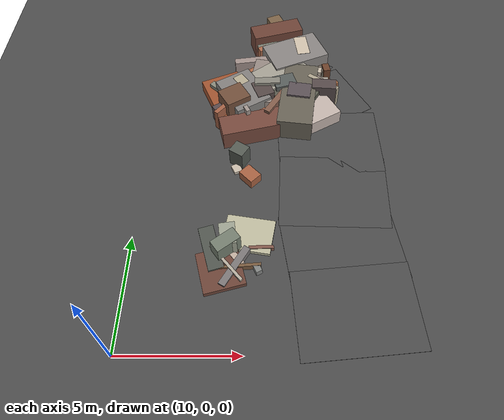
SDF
<sdf version="1.6">
 <world name="navitas_arena">
  <model name="ground_plane">
   <static>true</static>
   <link name="link">
    <collision name="collision">
     <geometry><plane><normal>0 0 1</normal><size>400 400</size></plane></geometry>
     <surface><friction><ode><mu>0.800</mu><mu2>0.800</mu2></ode></friction></surface>
    </collision>
    <visual name="visual">
     <cast_shadows>false</cast_shadows>
     <geometry><plane><normal>0 0 1</normal><size>400 400</size></plane></geometry>
     <material>
      <specular>0.04 0.04 0.04 1</specular>
      <script>
       <uri>file://media/materials/scripts/navitas_asphalt.material</uri>
       <name>Navitas/RealArenaAsphalt</name>
      </script>
     </material>
    </visual>
   </link>
  </model>
  <model name="road_orta_3_12">
   <static>true</static>
   <pose>19.454 1.800 0.040 0 0 1.664</pose>
   <link name="link">
    <collision name="col"><geometry><box><size>3.712 5.000 0.020</size></box></geometry></collision>
    <visual name="vis">
     <geometry><box><size>3.712 5.000 0.020</size></box></geometry>
     <material>
      <specular>0.04 0.04 0.04 1</specular>
      <script>
       <uri>file://media/materials/scripts/navitas_asphalt.material</uri>
       <name>Navitas/RealArenaAsphalt</name>
      </script>
     </material>
    </visual>
   </link>
  </model>
  <model name="road_orta_3_13">
   <static>true</static>
   <pose>19.097 4.600 0.040 0 0 1.730</pose>
   <link name="link">
    <collision name="col"><geometry><box><size>3.736 5.000 0.020</size></box></geometry></collision>
    <visual name="vis">
     <geometry><box><size>3.736 5.000 0.020</size></box></geometry>
     <material>
      <specular>0.04 0.04 0.04 1</specular>
      <script>
       <uri>file://media/materials/scripts/navitas_asphalt.material</uri>
       <name>Navitas/RealArenaAsphalt</name>
      </script>
     </material>
    </visual>
   </link>
  </model>
  <model name="road_orta_3_14">
   <static>true</static>
   <pose>18.908 7.460 0.040 0 0 1.546</pose>
   <link name="link">
    <collision name="col"><geometry><box><size>3.821 5.000 0.020</size></box></geometry></collision>
    <visual name="vis">
     <geometry><box><size>3.821 5.000 0.020</size></box></geometry>
     <material>
      <specular>0.04 0.04 0.04 1</specular>
      <script>
       <uri>file://media/materials/scripts/navitas_asphalt.material</uri>
       <name>Navitas/RealArenaAsphalt</name>
      </script>
     </material>
    </visual>
   </link>
  </model>
  <model name="road_orta_3_15">
   <static>true</static>
   <pose>18.885 10.340 0.040 0 0 1.612</pose>
   <link name="link">
    <collision name="col"><geometry><box><size>3.742 5.000 0.020</size></box></geometry></collision>
    <visual name="vis">
     <geometry><box><size>3.742 5.000 0.020</size></box></geometry>
     <material>
      <specular>0.04 0.04 0.04 1</specular>
      <script>
       <uri>file://media/materials/scripts/navitas_asphalt.material</uri>
       <name>Navitas/RealArenaAsphalt</name>
      </script>
     </material>
    </visual>
   </link>
  </model>
  <model name="road_orta_3_16">
   <static>true</static>
   <pose>18.223 12.833 0.040 0 0 2.083</pose>
   <link name="link">
    <collision name="col"><geometry><box><size>3.362 5.000 0.020</size></box></geometry></collision>
    <visual name="vis">
     <geometry><box><size>3.362 5.000 0.020</size></box></geometry>
     <material>
      <specular>0.04 0.04 0.04 1</specular>
      <script>
       <uri>file://media/materials/scripts/navitas_asphalt.material</uri>
       <name>Navitas/RealArenaAsphalt</name>
      </script>
     </material>
    </visual>
   </link>
  </model>
  <model name="road_orta_3_17">
   <static>true</static>
   <pose>16.523 14.688 0.040 0 0 2.523</pose>
   <link name="link">
    <collision name="col"><geometry><box><size>3.594 5.000 0.020</size></box></geometry></collision>
    <visual name="vis">
     <geometry><box><size>3.594 5.000 0.020</size></box></geometry>
     <material>
      <specular>0.04 0.04 0.04 1</specular>
      <script>
       <uri>file://media/materials/scripts/navitas_asphalt.material</uri>
       <name>Navitas/RealArenaAsphalt</name>
      </script>
     </material>
    </visual>
   </link>
  </model>
  <model name="blk_orta_3_2_0">
   <static>true</static>
   <pose>17.226 13.885 0.000 0 0 0</pose>
   <link name="link">
    <collision name="col_0">
     <pose>1.374 -0.624 0.568 0.000 0.000 0.205</pose>
     <geometry><box><size>1.724 0.210 1.137</size></box></geometry>
    </collision>
    <visual name="vis_0">
     <pose>1.374 -0.624 0.568 0.000 0.000 0.205</pose>
     <geometry><box><size>1.724 0.210 1.137</size></box></geometry>
     <material>
      <ambient>0.62 0.40 0.26 1</ambient>
      <diffuse>0.67 0.43 0.28 1</diffuse>
      <specular>0.05 0.05 0.045 1</specular>
     </material>
    </visual>
    <collision name="col_1">
     <pose>0.160 -1.307 0.623 0.000 0.000 1.444</pose>
     <geometry><box><size>4.067 1.708 1.245</size></box></geometry>
    </collision>
    <visual name="vis_1">
     <pose>0.160 -1.307 0.623 0.000 0.000 1.444</pose>
     <geometry><box><size>4.067 1.708 1.245</size></box></geometry>
     <material>
      <ambient>0.38 0.36 0.31 1</ambient>
      <diffuse>0.41 0.39 0.34 1</diffuse>
      <specular>0.05 0.05 0.045 1</specular>
     </material>
    </visual>
    <collision name="col_2">
     <pose>0.077 -1.583 0.586 0.000 0.000 2.283</pose>
     <geometry><box><size>1.327 0.203 1.172</size></box></geometry>
    </collision>
    <visual name="vis_2">
     <pose>0.077 -1.583 0.586 0.000 0.000 2.283</pose>
     <geometry><box><size>1.327 0.203 1.172</size></box></geometry>
     <material>
      <ambient>0.56 0.32 0.22 1</ambient>
      <diffuse>0.60 0.35 0.24 1</diffuse>
      <specular>0.05 0.05 0.045 1</specular>
     </material>
    </visual>
    <collision name="col_3">
     <pose>-0.698 1.566 0.465 0.000 0.000 0.122</pose>
     <geometry><box><size>0.433 0.311 0.930</size></box></geometry>
    </collision>
    <visual name="vis_3">
     <pose>-0.698 1.566 0.465 0.000 0.000 0.122</pose>
     <geometry><box><size>0.433 0.311 0.930</size></box></geometry>
     <material>
      <ambient>0.50 0.47 0.43 1</ambient>
      <diffuse>0.54 0.50 0.46 1</diffuse>
      <specular>0.05 0.05 0.045 1</specular>
     </material>
    </visual>
    <collision name="col_4">
     <pose>-0.459 0.687 0.471 0.000 0.000 2.238</pose>
     <geometry><box><size>0.347 0.515 0.943</size></box></geometry>
    </collision>
    <visual name="vis_4">
     <pose>-0.459 0.687 0.471 0.000 0.000 2.238</pose>
     <geometry><box><size>0.347 0.515 0.943</size></box></geometry>
     <material>
      <ambient>0.41 0.25 0.18 1</ambient>
      <diffuse>0.44 0.27 0.20 1</diffuse>
      <specular>0.05 0.05 0.045 1</specular>
     </material>
    </visual>
    <collision name="col_5">
     <pose>-0.523 -0.541 0.673 0.000 0.000 0.294</pose>
     <geometry><box><size>1.106 0.823 1.346</size></box></geometry>
    </collision>
    <visual name="vis_5">
     <pose>-0.523 -0.541 0.673 0.000 0.000 0.294</pose>
     <geometry><box><size>1.106 0.823 1.346</size></box></geometry>
     <material>
      <ambient>0.33 0.35 0.33 1</ambient>
      <diffuse>0.35 0.37 0.36 1</diffuse>
      <specular>0.05 0.05 0.045 1</specular>
     </material>
    </visual>
    <collision name="col_6">
     <pose>0.767 -1.237 0.401 0.000 0.000 2.089</pose>
     <geometry><box><size>3.151 1.680 0.802</size></box></geometry>
    </collision>
    <visual name="vis_6">
     <pose>0.767 -1.237 0.401 0.000 0.000 2.089</pose>
     <geometry><box><size>3.151 1.680 0.802</size></box></geometry>
     <material>
      <ambient>0.71 0.66 0.63 1</ambient>
      <diffuse>0.77 0.71 0.68 1</diffuse>
      <specular>0.05 0.05 0.045 1</specular>
     </material>
    </visual>
    <collision name="col_7">
     <pose>1.459 0.975 0.288 0.000 0.000 2.180</pose>
     <geometry><box><size>0.374 0.271 0.577</size></box></geometry>
    </collision>
    <visual name="vis_7">
     <pose>1.459 0.975 0.288 0.000 0.000 2.180</pose>
     <geometry><box><size>0.374 0.271 0.577</size></box></geometry>
     <material>
      <ambient>0.55 0.55 0.49 1</ambient>
      <diffuse>0.59 0.60 0.53 1</diffuse>
      <specular>0.05 0.05 0.045 1</specular>
     </material>
    </visual>
   </link>
  </model>
  <model name="blk_orta_3_2_1">
   <static>true</static>
   <pose>14.867 12.426 0.000 0 0 0</pose>
   <link name="link">
    <collision name="col_0">
     <pose>-1.225 0.611 0.421 0.000 0.000 2.402</pose>
     <geometry><box><size>1.885 0.304 0.842</size></box></geometry>
    </collision>
    <visual name="vis_0">
     <pose>-1.225 0.611 0.421 0.000 0.000 2.402</pose>
     <geometry><box><size>1.885 0.304 0.842</size></box></geometry>
     <material>
      <ambient>0.50 0.50 0.44 1</ambient>
      <diffuse>0.54 0.54 0.48 1</diffuse>
      <specular>0.05 0.05 0.045 1</specular>
     </material>
    </visual>
    <collision name="col_1">
     <pose>-0.673 -0.235 0.782 0.000 0.000 3.681</pose>
     <geometry><box><size>1.243 1.107 1.563</size></box></geometry>
    </collision>
    <visual name="vis_1">
     <pose>-0.673 -0.235 0.782 0.000 0.000 3.681</pose>
     <geometry><box><size>1.243 1.107 1.563</size></box></geometry>
     <material>
      <ambient>0.42 0.29 0.21 1</ambient>
      <diffuse>0.45 0.31 0.23 1</diffuse>
      <specular>0.05 0.05 0.045 1</specular>
     </material>
    </visual>
    <collision name="col_2">
     <pose>0.274 -1.508 0.511 0.000 0.000 3.386</pose>
     <geometry><box><size>3.200 1.166 1.021</size></box></geometry>
    </collision>
    <visual name="vis_2">
     <pose>0.274 -1.508 0.511 0.000 0.000 3.386</pose>
     <geometry><box><size>3.200 1.166 1.021</size></box></geometry>
     <material>
      <ambient>0.44 0.27 0.22 1</ambient>
      <diffuse>0.47 0.29 0.24 1</diffuse>
      <specular>0.05 0.05 0.045 1</specular>
     </material>
    </visual>
    <collision name="col_3">
     <pose>-1.006 0.580 0.314 0.000 0.000 1.981</pose>
     <geometry><box><size>2.894 1.985 0.629</size></box></geometry>
    </collision>
    <visual name="vis_3">
     <pose>-1.006 0.580 0.314 0.000 0.000 1.981</pose>
     <geometry><box><size>2.894 1.985 0.629</size></box></geometry>
     <material>
      <ambient>0.58 0.31 0.18 1</ambient>
      <diffuse>0.63 0.33 0.19 1</diffuse>
      <specular>0.05 0.05 0.045 1</specular>
     </material>
    </visual>
    <collision name="col_4">
     <pose>0.222 0.332 0.520 0.000 0.000 4.256</pose>
     <geometry><box><size>0.295 0.303 1.040</size></box></geometry>
    </collision>
    <visual name="vis_4">
     <pose>0.222 0.332 0.520 0.000 0.000 4.256</pose>
     <geometry><box><size>0.295 0.303 1.040</size></box></geometry>
     <material>
      <ambient>0.38 0.28 0.21 1</ambient>
      <diffuse>0.42 0.30 0.23 1</diffuse>
      <specular>0.05 0.05 0.045 1</specular>
     </material>
    </visual>
    <collision name="col_5">
     <pose>-0.257 0.365 0.619 0.000 0.000 2.109</pose>
     <geometry><box><size>2.383 1.904 1.238</size></box></geometry>
    </collision>
    <visual name="vis_5">
     <pose>-0.257 0.365 0.619 0.000 0.000 2.109</pose>
     <geometry><box><size>2.383 1.904 1.238</size></box></geometry>
     <material>
      <ambient>0.47 0.46 0.45 1</ambient>
      <diffuse>0.51 0.50 0.49 1</diffuse>
      <specular>0.05 0.05 0.045 1</specular>
     </material>
    </visual>
    <collision name="col_6">
     <pose>0.960 0.823 0.722 0.000 0.000 3.194</pose>
     <geometry><box><size>1.298 0.415 1.445</size></box></geometry>
    </collision>
    <visual name="vis_6">
     <pose>0.960 0.823 0.722 0.000 0.000 3.194</pose>
     <geometry><box><size>1.298 0.415 1.445</size></box></geometry>
     <material>
      <ambient>0.50 0.49 0.45 1</ambient>
      <diffuse>0.54 0.53 0.49 1</diffuse>
      <specular>0.05 0.05 0.045 1</specular>
     </material>
    </visual>
    <collision name="col_7">
     <pose>-0.109 -0.465 0.287 0.000 0.000 4.123</pose>
     <geometry><box><size>2.295 0.278 0.574</size></box></geometry>
    </collision>
    <visual name="vis_7">
     <pose>-0.109 -0.465 0.287 0.000 0.000 4.123</pose>
     <geometry><box><size>2.295 0.278 0.574</size></box></geometry>
     <material>
      <ambient>0.39 0.26 0.23 1</ambient>
      <diffuse>0.42 0.28 0.25 1</diffuse>
      <specular>0.05 0.05 0.045 1</specular>
     </material>
    </visual>
   </link>
  </model>
  <model name="blk_orta_3_2_2">
   <static>true</static>
   <pose>16.399 16.655 0.000 0 0 0</pose>
   <link name="link">
    <collision name="col_0">
     <pose>0.217 0.101 0.414 0.000 0.000 0.162</pose>
     <geometry><box><size>2.706 0.398 0.828</size></box></geometry>
    </collision>
    <visual name="vis_0">
     <pose>0.217 0.101 0.414 0.000 0.000 0.162</pose>
     <geometry><box><size>2.706 0.398 0.828</size></box></geometry>
     <material>
      <ambient>0.45 0.47 0.42 1</ambient>
      <diffuse>0.49 0.50 0.45 1</diffuse>
      <specular>0.05 0.05 0.045 1</specular>
     </material>
    </visual>
    <collision name="col_1">
     <pose>-0.807 -0.492 0.496 0.000 0.000 0.450</pose>
     <geometry><box><size>0.493 0.358 0.991</size></box></geometry>
    </collision>
    <visual name="vis_1">
     <pose>-0.807 -0.492 0.496 0.000 0.000 0.450</pose>
     <geometry><box><size>0.493 0.358 0.991</size></box></geometry>
     <material>
      <ambient>0.62 0.39 0.28 1</ambient>
      <diffuse>0.67 0.42 0.30 1</diffuse>
      <specular>0.05 0.05 0.045 1</specular>
     </material>
    </visual>
    <collision name="col_2">
     <pose>-0.033 1.403 0.619 0.000 0.000 0.413</pose>
     <geometry><box><size>0.760 1.230 1.238</size></box></geometry>
    </collision>
    <visual name="vis_2">
     <pose>-0.033 1.403 0.619 0.000 0.000 0.413</pose>
     <geometry><box><size>0.760 1.230 1.238</size></box></geometry>
     <material>
      <ambient>0.46 0.36 0.26 1</ambient>
      <diffuse>0.49 0.39 0.28 1</diffuse>
      <specular>0.05 0.05 0.045 1</specular>
     </material>
    </visual>
    <collision name="col_3">
     <pose>-0.078 0.823 0.645 0.000 0.000 0.286</pose>
     <geometry><box><size>2.727 1.050 1.290</size></box></geometry>
    </collision>
    <visual name="vis_3">
     <pose>-0.078 0.823 0.645 0.000 0.000 0.286</pose>
     <geometry><box><size>2.727 1.050 1.290</size></box></geometry>
     <material>
      <ambient>0.40 0.24 0.20 1</ambient>
      <diffuse>0.43 0.26 0.21 1</diffuse>
      <specular>0.05 0.05 0.045 1</specular>
     </material>
    </visual>
    <collision name="col_4">
     <pose>-0.440 1.229 0.562 0.000 0.000 -1.252</pose>
     <geometry><box><size>0.284 0.367 1.125</size></box></geometry>
    </collision>
    <visual name="vis_4">
     <pose>-0.440 1.229 0.562 0.000 0.000 -1.252</pose>
     <geometry><box><size>0.284 0.367 1.125</size></box></geometry>
     <material>
      <ambient>0.67 0.39 0.29 1</ambient>
      <diffuse>0.72 0.42 0.31 1</diffuse>
      <specular>0.05 0.05 0.045 1</specular>
     </material>
    </visual>
    <collision name="col_5">
     <pose>-0.792 -1.305 0.496 0.000 0.000 0.150</pose>
     <geometry><box><size>3.058 0.379 0.991</size></box></geometry>
    </collision>
    <visual name="vis_5">
     <pose>-0.792 -1.305 0.496 0.000 0.000 0.150</pose>
     <geometry><box><size>3.058 0.379 0.991</size></box></geometry>
     <material>
      <ambient>0.59 0.53 0.51 1</ambient>
      <diffuse>0.64 0.57 0.55 1</diffuse>
      <specular>0.05 0.05 0.045 1</specular>
     </material>
    </visual>
    <collision name="col_6">
     <pose>0.907 -1.005 0.654 0.000 0.000 0.400</pose>
     <geometry><box><size>3.001 1.937 1.307</size></box></geometry>
    </collision>
    <visual name="vis_6">
     <pose>0.907 -1.005 0.654 0.000 0.000 0.400</pose>
     <geometry><box><size>3.001 1.937 1.307</size></box></geometry>
     <material>
      <ambient>0.50 0.48 0.47 1</ambient>
      <diffuse>0.54 0.52 0.51 1</diffuse>
      <specular>0.05 0.05 0.045 1</specular>
     </material>
    </visual>
    <collision name="col_7">
     <pose>0.331 -0.548 0.466 0.000 0.000 0.179</pose>
     <geometry><box><size>0.431 0.306 0.932</size></box></geometry>
    </collision>
    <visual name="vis_7">
     <pose>0.331 -0.548 0.466 0.000 0.000 0.179</pose>
     <geometry><box><size>0.431 0.306 0.932</size></box></geometry>
     <material>
      <ambient>0.58 0.34 0.23 1</ambient>
      <diffuse>0.62 0.36 0.25 1</diffuse>
      <specular>0.05 0.05 0.045 1</specular>
     </material>
    </visual>
   </link>
  </model>
  <model name="blk_orta_3_2_4">
   <static>true</static>
   <pose>15.656 12.821 0.000 0 0 0</pose>
   <link name="link">
    <collision name="col_0">
     <pose>-0.821 -1.384 0.662 0.000 0.000 2.039</pose>
     <geometry><box><size>0.386 0.204 1.324</size></box></geometry>
    </collision>
    <visual name="vis_0">
     <pose>-0.821 -1.384 0.662 0.000 0.000 2.039</pose>
     <geometry><box><size>0.386 0.204 1.324</size></box></geometry>
     <material>
      <ambient>0.59 0.54 0.52 1</ambient>
      <diffuse>0.64 0.59 0.56 1</diffuse>
      <specular>0.05 0.05 0.045 1</specular>
     </material>
    </visual>
    <collision name="col_1">
     <pose>-1.393 -0.432 0.589 0.000 0.000 0.861</pose>
     <geometry><box><size>2.917 0.229 1.177</size></box></geometry>
    </collision>
    <visual name="vis_1">
     <pose>-1.393 -0.432 0.589 0.000 0.000 0.861</pose>
     <geometry><box><size>2.917 0.229 1.177</size></box></geometry>
     <material>
      <ambient>0.60 0.36 0.26 1</ambient>
      <diffuse>0.65 0.39 0.28 1</diffuse>
      <specular>0.05 0.05 0.045 1</specular>
     </material>
    </visual>
    <collision name="col_2">
     <pose>1.421 0.889 0.439 0.000 0.000 3.036</pose>
     <geometry><box><size>3.778 1.059 0.878</size></box></geometry>
    </collision>
    <visual name="vis_2">
     <pose>1.421 0.889 0.439 0.000 0.000 3.036</pose>
     <geometry><box><size>3.778 1.059 0.878</size></box></geometry>
     <material>
      <ambient>0.62 0.60 0.55 1</ambient>
      <diffuse>0.67 0.64 0.59 1</diffuse>
      <specular>0.05 0.05 0.045 1</specular>
     </material>
    </visual>
    <collision name="col_3">
     <pose>-1.183 0.680 0.620 0.000 0.000 2.212</pose>
     <geometry><box><size>0.657 0.540 1.240</size></box></geometry>
    </collision>
    <visual name="vis_3">
     <pose>-1.183 0.680 0.620 0.000 0.000 2.212</pose>
     <geometry><box><size>0.657 0.540 1.240</size></box></geometry>
     <material>
      <ambient>0.66 0.62 0.53 1</ambient>
      <diffuse>0.71 0.67 0.57 1</diffuse>
      <specular>0.05 0.05 0.045 1</specular>
     </material>
    </visual>
    <collision name="col_4">
     <pose>-1.363 -0.284 0.446 0.000 0.000 0.547</pose>
     <geometry><box><size>2.714 0.290 0.891</size></box></geometry>
    </collision>
    <visual name="vis_4">
     <pose>-1.363 -0.284 0.446 0.000 0.000 0.547</pose>
     <geometry><box><size>2.714 0.290 0.891</size></box></geometry>
     <material>
      <ambient>0.32 0.27 0.28 1</ambient>
      <diffuse>0.35 0.29 0.30 1</diffuse>
      <specular>0.05 0.05 0.045 1</specular>
     </material>
    </visual>
    <collision name="col_5">
     <pose>1.384 0.277 0.543 0.000 0.000 2.609</pose>
     <geometry><box><size>2.762 1.862 1.086</size></box></geometry>
    </collision>
    <visual name="vis_5">
     <pose>1.384 0.277 0.543 0.000 0.000 2.609</pose>
     <geometry><box><size>2.762 1.862 1.086</size></box></geometry>
     <material>
      <ambient>0.34 0.34 0.29 1</ambient>
      <diffuse>0.36 0.36 0.31 1</diffuse>
      <specular>0.05 0.05 0.045 1</specular>
     </material>
    </visual>
    <collision name="col_6">
     <pose>-0.057 0.056 0.635 0.000 0.000 1.956</pose>
     <geometry><box><size>1.061 0.878 1.270</size></box></geometry>
    </collision>
    <visual name="vis_6">
     <pose>-0.057 0.056 0.635 0.000 0.000 1.956</pose>
     <geometry><box><size>1.061 0.878 1.270</size></box></geometry>
     <material>
      <ambient>0.32 0.27 0.25 1</ambient>
      <diffuse>0.34 0.29 0.28 1</diffuse>
      <specular>0.05 0.05 0.045 1</specular>
     </material>
    </visual>
   </link>
  </model>
  <model name="blk_orta_3_2_5">
   <static>true</static>
   <pose>16.195 12.945 0.000 0 0 0</pose>
   <link name="link">
    <collision name="col_0">
     <pose>-0.383 0.126 0.357 0.000 0.000 0.926</pose>
     <geometry><box><size>0.663 0.346 0.713</size></box></geometry>
    </collision>
    <visual name="vis_0">
     <pose>-0.383 0.126 0.357 0.000 0.000 0.926</pose>
     <geometry><box><size>0.663 0.346 0.713</size></box></geometry>
     <material>
      <ambient>0.40 0.26 0.22 1</ambient>
      <diffuse>0.43 0.28 0.24 1</diffuse>
      <specular>0.05 0.05 0.045 1</specular>
     </material>
    </visual>
    <collision name="col_1">
     <pose>0.348 -0.371 0.591 0.000 0.000 1.014</pose>
     <geometry><box><size>2.811 0.310 1.182</size></box></geometry>
    </collision>
    <visual name="vis_1">
     <pose>0.348 -0.371 0.591 0.000 0.000 1.014</pose>
     <geometry><box><size>2.811 0.310 1.182</size></box></geometry>
     <material>
      <ambient>0.48 0.34 0.28 1</ambient>
      <diffuse>0.52 0.37 0.30 1</diffuse>
      <specular>0.05 0.05 0.045 1</specular>
     </material>
    </visual>
    <collision name="col_2">
     <pose>-0.346 0.633 0.345 0.000 0.000 -0.951</pose>
     <geometry><box><size>3.180 1.309 0.690</size></box></geometry>
    </collision>
    <visual name="vis_2">
     <pose>-0.346 0.633 0.345 0.000 0.000 -0.951</pose>
     <geometry><box><size>3.180 1.309 0.690</size></box></geometry>
     <material>
      <ambient>0.63 0.39 0.26 1</ambient>
      <diffuse>0.68 0.42 0.28 1</diffuse>
      <specular>0.05 0.05 0.045 1</specular>
     </material>
    </visual>
    <collision name="col_3">
     <pose>0.280 0.983 0.519 0.000 0.000 0.106</pose>
     <geometry><box><size>2.496 2.096 1.038</size></box></geometry>
    </collision>
    <visual name="vis_3">
     <pose>0.280 0.983 0.519 0.000 0.000 0.106</pose>
     <geometry><box><size>2.496 2.096 1.038</size></box></geometry>
     <material>
      <ambient>0.52 0.52 0.48 1</ambient>
      <diffuse>0.57 0.56 0.52 1</diffuse>
      <specular>0.05 0.05 0.045 1</specular>
     </material>
    </visual>
    <collision name="col_4">
     <pose>-0.549 -0.787 0.544 0.000 0.000 -0.005</pose>
     <geometry><box><size>3.069 0.200 1.089</size></box></geometry>
    </collision>
    <visual name="vis_4">
     <pose>-0.549 -0.787 0.544 0.000 0.000 -0.005</pose>
     <geometry><box><size>3.069 0.200 1.089</size></box></geometry>
     <material>
      <ambient>0.57 0.53 0.50 1</ambient>
      <diffuse>0.62 0.57 0.54 1</diffuse>
      <specular>0.05 0.05 0.045 1</specular>
     </material>
    </visual>
    <collision name="col_5">
     <pose>0.012 1.030 0.527 0.000 0.000 1.393</pose>
     <geometry><box><size>2.161 2.375 1.054</size></box></geometry>
    </collision>
    <visual name="vis_5">
     <pose>0.012 1.030 0.527 0.000 0.000 1.393</pose>
     <geometry><box><size>2.161 2.375 1.054</size></box></geometry>
     <material>
      <ambient>0.54 0.50 0.47 1</ambient>
      <diffuse>0.59 0.54 0.51 1</diffuse>
      <specular>0.05 0.05 0.045 1</specular>
     </material>
    </visual>
    <collision name="col_6">
     <pose>0.936 0.249 0.339 0.000 0.000 0.683</pose>
     <geometry><box><size>3.009 0.389 0.678</size></box></geometry>
    </collision>
    <visual name="vis_6">
     <pose>0.936 0.249 0.339 0.000 0.000 0.683</pose>
     <geometry><box><size>3.009 0.389 0.678</size></box></geometry>
     <material>
      <ambient>0.68 0.39 0.30 1</ambient>
      <diffuse>0.73 0.42 0.32 1</diffuse>
      <specular>0.05 0.05 0.045 1</specular>
     </material>
    </visual>
    <collision name="col_7">
     <pose>-0.011 0.270 0.521 0.000 0.000 -0.691</pose>
     <geometry><box><size>3.160 0.919 1.043</size></box></geometry>
    </collision>
    <visual name="vis_7">
     <pose>-0.011 0.270 0.521 0.000 0.000 -0.691</pose>
     <geometry><box><size>3.160 0.919 1.043</size></box></geometry>
     <material>
      <ambient>0.31 0.31 0.29 1</ambient>
      <diffuse>0.34 0.33 0.32 1</diffuse>
      <specular>0.05 0.05 0.045 1</specular>
     </material>
    </visual>
    <collision name="col_8">
     <pose>-0.369 0.698 0.601 0.000 0.000 0.649</pose>
     <geometry><box><size>4.476 1.647 1.201</size></box></geometry>
    </collision>
    <visual name="vis_8">
     <pose>-0.369 0.698 0.601 0.000 0.000 0.649</pose>
     <geometry><box><size>4.476 1.647 1.201</size></box></geometry>
     <material>
      <ambient>0.60 0.59 0.53 1</ambient>
      <diffuse>0.65 0.63 0.58 1</diffuse>
      <specular>0.05 0.05 0.045 1</specular>
     </material>
    </visual>
    <collision name="col_9">
     <pose>-0.308 -0.574 0.350 0.000 0.000 0.838</pose>
     <geometry><box><size>2.304 0.305 0.700</size></box></geometry>
    </collision>
    <visual name="vis_9">
     <pose>-0.308 -0.574 0.350 0.000 0.000 0.838</pose>
     <geometry><box><size>2.304 0.305 0.700</size></box></geometry>
     <material>
      <ambient>0.65 0.39 0.28 1</ambient>
      <diffuse>0.70 0.42 0.30 1</diffuse>
      <specular>0.05 0.05 0.045 1</specular>
     </material>
    </visual>
   </link>
  </model>
  <model name="blk_orta_3_2_6">
   <static>true</static>
   <pose>17.755 14.159 0.000 0 0 0</pose>
   <link name="link">
    <collision name="col_0">
     <pose>0.923 -0.809 0.625 0.000 0.000 -0.608</pose>
     <geometry><box><size>1.742 0.242 1.250</size></box></geometry>
    </collision>
    <visual name="vis_0">
     <pose>0.923 -0.809 0.625 0.000 0.000 -0.608</pose>
     <geometry><box><size>1.742 0.242 1.250</size></box></geometry>
     <material>
      <ambient>0.64 0.60 0.52 1</ambient>
      <diffuse>0.69 0.65 0.56 1</diffuse>
      <specular>0.05 0.05 0.045 1</specular>
     </material>
    </visual>
    <collision name="col_1">
     <pose>-0.289 0.894 0.365 0.000 0.000 -0.596</pose>
     <geometry><box><size>0.322 0.548 0.730</size></box></geometry>
    </collision>
    <visual name="vis_1">
     <pose>-0.289 0.894 0.365 0.000 0.000 -0.596</pose>
     <geometry><box><size>0.322 0.548 0.730</size></box></geometry>
     <material>
      <ambient>0.43 0.28 0.23 1</ambient>
      <diffuse>0.46 0.30 0.25 1</diffuse>
      <specular>0.05 0.05 0.045 1</specular>
     </material>
    </visual>
    <collision name="col_2">
     <pose>0.957 -1.051 0.673 0.000 0.000 -0.070</pose>
     <geometry><box><size>1.210 0.639 1.346</size></box></geometry>
    </collision>
    <visual name="vis_2">
     <pose>0.957 -1.051 0.673 0.000 0.000 -0.070</pose>
     <geometry><box><size>1.210 0.639 1.346</size></box></geometry>
     <material>
      <ambient>0.31 0.27 0.27 1</ambient>
      <diffuse>0.34 0.29 0.29 1</diffuse>
      <specular>0.05 0.05 0.045 1</specular>
     </material>
    </visual>
    <collision name="col_3">
     <pose>-0.109 -0.712 0.412 0.000 0.000 -0.140</pose>
     <geometry><box><size>0.425 0.661 0.824</size></box></geometry>
    </collision>
    <visual name="vis_3">
     <pose>-0.109 -0.712 0.412 0.000 0.000 -0.140</pose>
     <geometry><box><size>0.425 0.661 0.824</size></box></geometry>
     <material>
      <ambient>0.53 0.54 0.48 1</ambient>
      <diffuse>0.58 0.58 0.52 1</diffuse>
      <specular>0.05 0.05 0.045 1</specular>
     </material>
    </visual>
    <collision name="col_4">
     <pose>1.212 0.771 0.386 0.000 0.000 0.197</pose>
     <geometry><box><size>0.359 0.529 0.771</size></box></geometry>
    </collision>
    <visual name="vis_4">
     <pose>1.212 0.771 0.386 0.000 0.000 0.197</pose>
     <geometry><box><size>0.359 0.529 0.771</size></box></geometry>
     <material>
      <ambient>0.39 0.24 0.16 1</ambient>
      <diffuse>0.43 0.26 0.17 1</diffuse>
      <specular>0.05 0.05 0.045 1</specular>
     </material>
    </visual>
    <collision name="col_5">
     <pose>-1.534 0.057 0.576 0.000 0.000 2.044</pose>
     <geometry><box><size>0.663 0.366 1.152</size></box></geometry>
    </collision>
    <visual name="vis_5">
     <pose>-1.534 0.057 0.576 0.000 0.000 2.044</pose>
     <geometry><box><size>0.663 0.366 1.152</size></box></geometry>
     <material>
      <ambient>0.32 0.30 0.29 1</ambient>
      <diffuse>0.34 0.32 0.31 1</diffuse>
      <specular>0.05 0.05 0.045 1</specular>
     </material>
    </visual>
    <collision name="col_6">
     <pose>-0.309 -1.455 0.673 0.000 0.000 -0.157</pose>
     <geometry><box><size>1.148 0.920 1.346</size></box></geometry>
    </collision>
    <visual name="vis_6">
     <pose>-0.309 -1.455 0.673 0.000 0.000 -0.157</pose>
     <geometry><box><size>1.148 0.920 1.346</size></box></geometry>
     <material>
      <ambient>0.34 0.30 0.31 1</ambient>
      <diffuse>0.36 0.32 0.34 1</diffuse>
      <specular>0.05 0.05 0.045 1</specular>
     </material>
    </visual>
    <collision name="col_7">
     <pose>0.482 -1.092 0.331 0.000 0.000 0.292</pose>
     <geometry><box><size>0.296 0.568 0.662</size></box></geometry>
    </collision>
    <visual name="vis_7">
     <pose>0.482 -1.092 0.331 0.000 0.000 0.292</pose>
     <geometry><box><size>0.296 0.568 0.662</size></box></geometry>
     <material>
      <ambient>0.36 0.32 0.32 1</ambient>
      <diffuse>0.38 0.35 0.35 1</diffuse>
      <specular>0.05 0.05 0.045 1</specular>
     </material>
    </visual>
    <collision name="col_8">
     <pose>0.159 0.327 0.530 0.000 0.000 -0.150</pose>
     <geometry><box><size>1.504 0.367 1.061</size></box></geometry>
    </collision>
    <visual name="vis_8">
     <pose>0.159 0.327 0.530 0.000 0.000 -0.150</pose>
     <geometry><box><size>1.504 0.367 1.061</size></box></geometry>
     <material>
      <ambient>0.73 0.69 0.62 1</ambient>
      <diffuse>0.79 0.74 0.67 1</diffuse>
      <specular>0.05 0.05 0.045 1</specular>
     </material>
    </visual>
   </link>
  </model>
  <model name="blk_orta_3_2_7">
   <static>true</static>
   <pose>17.480 15.430 0.000 0 0 0</pose>
   <link name="link">
    <collision name="col_0">
     <pose>0.188 0.628 0.659 0.000 0.000 0.150</pose>
     <geometry><box><size>0.670 1.355 1.317</size></box></geometry>
    </collision>
    <visual name="vis_0">
     <pose>0.188 0.628 0.659 0.000 0.000 0.150</pose>
     <geometry><box><size>0.670 1.355 1.317</size></box></geometry>
     <material>
      <ambient>0.75 0.70 0.63 1</ambient>
      <diffuse>0.82 0.76 0.68 1</diffuse>
      <specular>0.05 0.05 0.045 1</specular>
     </material>
    </visual>
    <collision name="col_1">
     <pose>-0.204 0.603 0.522 0.000 0.000 -0.818</pose>
     <geometry><box><size>0.595 0.398 1.044</size></box></geometry>
    </collision>
    <visual name="vis_1">
     <pose>-0.204 0.603 0.522 0.000 0.000 -0.818</pose>
     <geometry><box><size>0.595 0.398 1.044</size></box></geometry>
     <material>
      <ambient>0.48 0.36 0.30 1</ambient>
      <diffuse>0.52 0.39 0.32 1</diffuse>
      <specular>0.05 0.05 0.045 1</specular>
     </material>
    </visual>
    <collision name="col_2">
     <pose>-0.911 -0.794 0.339 0.000 0.000 0.819</pose>
     <geometry><box><size>2.200 0.141 0.677</size></box></geometry>
    </collision>
    <visual name="vis_2">
     <pose>-0.911 -0.794 0.339 0.000 0.000 0.819</pose>
     <geometry><box><size>2.200 0.141 0.677</size></box></geometry>
     <material>
      <ambient>0.47 0.46 0.44 1</ambient>
      <diffuse>0.51 0.50 0.47 1</diffuse>
      <specular>0.05 0.05 0.045 1</specular>
     </material>
    </visual>
    <collision name="col_3">
     <pose>-0.953 0.367 0.431 0.000 0.000 1.250</pose>
     <geometry><box><size>2.298 0.177 0.861</size></box></geometry>
    </collision>
    <visual name="vis_3">
     <pose>-0.953 0.367 0.431 0.000 0.000 1.250</pose>
     <geometry><box><size>2.298 0.177 0.861</size></box></geometry>
     <material>
      <ambient>0.71 0.63 0.57 1</ambient>
      <diffuse>0.77 0.68 0.62 1</diffuse>
      <specular>0.05 0.05 0.045 1</specular>
     </material>
    </visual>
    <collision name="col_4">
     <pose>0.442 -1.213 0.573 0.000 0.000 -0.778</pose>
     <geometry><box><size>2.356 0.314 1.145</size></box></geometry>
    </collision>
    <visual name="vis_4">
     <pose>0.442 -1.213 0.573 0.000 0.000 -0.778</pose>
     <geometry><box><size>2.356 0.314 1.145</size></box></geometry>
     <material>
      <ambient>0.57 0.52 0.49 1</ambient>
      <diffuse>0.62 0.56 0.53 1</diffuse>
      <specular>0.05 0.05 0.045 1</specular>
     </material>
    </visual>
    <collision name="col_5">
     <pose>0.632 0.986 0.569 0.000 0.000 1.368</pose>
     <geometry><box><size>0.756 0.449 1.137</size></box></geometry>
    </collision>
    <visual name="vis_5">
     <pose>0.632 0.986 0.569 0.000 0.000 1.368</pose>
     <geometry><box><size>0.756 0.449 1.137</size></box></geometry>
     <material>
      <ambient>0.76 0.69 0.62 1</ambient>
      <diffuse>0.82 0.75 0.67 1</diffuse>
      <specular>0.05 0.05 0.045 1</specular>
     </material>
    </visual>
    <collision name="col_6">
     <pose>0.575 -0.910 0.335 0.000 0.000 1.242</pose>
     <geometry><box><size>2.902 1.235 0.670</size></box></geometry>
    </collision>
    <visual name="vis_6">
     <pose>0.575 -0.910 0.335 0.000 0.000 1.242</pose>
     <geometry><box><size>2.902 1.235 0.670</size></box></geometry>
     <material>
      <ambient>0.37 0.33 0.30 1</ambient>
      <diffuse>0.40 0.36 0.32 1</diffuse>
      <specular>0.05 0.05 0.045 1</specular>
     </material>
    </visual>
   </link>
  </model>
  <model name="deb_orta_46">
   <static>true</static>
   <pose>14.678 4.190 0.000 0 0 0</pose>
   <link name="link">
    <collision name="col_0">
     <pose>0.799 -0.721 0.160 0.000 0.000 3.620</pose>
     <geometry><box><size>0.268 0.351 0.319</size></box></geometry>
    </collision>
    <visual name="vis_0">
     <pose>0.799 -0.721 0.160 0.000 0.000 3.620</pose>
     <geometry><box><size>0.268 0.351 0.319</size></box></geometry>
     <material>
      <ambient>0.47 0.48 0.47 1</ambient>
      <diffuse>0.51 0.52 0.51 1</diffuse>
      <specular>0.05 0.05 0.045 1</specular>
     </material>
    </visual>
    <collision name="col_1">
     <pose>-0.536 0.167 0.552 0.000 0.000 3.786</pose>
     <geometry><box><size>1.140 0.594 1.104</size></box></geometry>
    </collision>
    <visual name="vis_1">
     <pose>-0.536 0.167 0.552 0.000 0.000 3.786</pose>
     <geometry><box><size>1.140 0.594 1.104</size></box></geometry>
     <material>
      <ambient>0.42 0.46 0.41 1</ambient>
      <diffuse>0.46 0.50 0.44 1</diffuse>
      <specular>0.05 0.05 0.045 1</specular>
     </material>
    </visual>
    <collision name="col_2">
     <pose>0.081 -0.616 0.165 0.000 0.000 3.221</pose>
     <geometry><box><size>1.737 0.127 0.330</size></box></geometry>
    </collision>
    <visual name="vis_2">
     <pose>0.081 -0.616 0.165 0.000 0.000 3.221</pose>
     <geometry><box><size>1.737 0.127 0.330</size></box></geometry>
     <material>
      <ambient>0.44 0.33 0.23 1</ambient>
      <diffuse>0.48 0.36 0.25 1</diffuse>
      <specular>0.05 0.05 0.045 1</specular>
     </material>
    </visual>
    <collision name="col_3">
     <pose>-0.743 -0.723 0.122 0.000 0.000 1.838</pose>
     <geometry><box><size>1.841 1.793 0.243</size></box></geometry>
    </collision>
    <visual name="vis_3">
     <pose>-0.743 -0.723 0.122 0.000 0.000 1.838</pose>
     <geometry><box><size>1.841 1.793 0.243</size></box></geometry>
     <material>
      <ambient>0.40 0.25 0.20 1</ambient>
      <diffuse>0.43 0.27 0.22 1</diffuse>
      <specular>0.05 0.05 0.045 1</specular>
     </material>
    </visual>
    <collision name="col_4">
     <pose>0.373 0.941 0.089 0.000 0.000 2.980</pose>
     <geometry><box><size>2.155 1.630 0.177</size></box></geometry>
    </collision>
    <visual name="vis_4">
     <pose>0.373 0.941 0.089 0.000 0.000 2.980</pose>
     <geometry><box><size>2.155 1.630 0.177</size></box></geometry>
     <material>
      <ambient>0.69 0.69 0.58 1</ambient>
      <diffuse>0.75 0.74 0.63 1</diffuse>
      <specular>0.05 0.05 0.045 1</specular>
     </material>
    </visual>
    <collision name="col_5">
     <pose>-1.200 0.208 0.167 0.000 0.000 1.864</pose>
     <geometry><box><size>2.071 0.672 0.334</size></box></geometry>
    </collision>
    <visual name="vis_5">
     <pose>-1.200 0.208 0.167 0.000 0.000 1.864</pose>
     <geometry><box><size>2.071 0.672 0.334</size></box></geometry>
     <material>
      <ambient>0.29 0.31 0.29 1</ambient>
      <diffuse>0.32 0.34 0.31 1</diffuse>
      <specular>0.05 0.05 0.045 1</specular>
     </material>
    </visual>
   </link>
  </model>
  <model name="deb_orta_152">
   <static>true</static>
   <pose>14.925 9.021 0.000 0 0 0</pose>
   <link name="link">
    <collision name="col_0">
     <pose>0.129 -0.894 0.248 0.000 0.000 2.346</pose>
     <geometry><box><size>0.811 0.631 0.496</size></box></geometry>
    </collision>
    <visual name="vis_0">
     <pose>0.129 -0.894 0.248 0.000 0.000 2.346</pose>
     <geometry><box><size>0.811 0.631 0.496</size></box></geometry>
     <material>
      <ambient>0.61 0.36 0.24 1</ambient>
      <diffuse>0.66 0.39 0.26 1</diffuse>
      <specular>0.05 0.05 0.045 1</specular>
     </material>
    </visual>
    <collision name="col_1">
     <pose>-0.149 0.544 0.075 0.000 0.000 4.252</pose>
     <geometry><box><size>0.379 0.341 0.150</size></box></geometry>
    </collision>
    <visual name="vis_1">
     <pose>-0.149 0.544 0.075 0.000 0.000 4.252</pose>
     <geometry><box><size>0.379 0.341 0.150</size></box></geometry>
     <material>
      <ambient>0.50 0.51 0.46 1</ambient>
      <diffuse>0.54 0.55 0.50 1</diffuse>
      <specular>0.05 0.05 0.045 1</specular>
     </material>
    </visual>
    <collision name="col_2">
     <pose>-0.386 0.172 0.496 0.000 0.000 2.583</pose>
     <geometry><box><size>0.730 0.667 0.992</size></box></geometry>
    </collision>
    <visual name="vis_2">
     <pose>-0.386 0.172 0.496 0.000 0.000 2.583</pose>
     <geometry><box><size>0.730 0.667 0.992</size></box></geometry>
     <material>
      <ambient>0.32 0.33 0.30 1</ambient>
      <diffuse>0.34 0.36 0.33 1</diffuse>
      <specular>0.05 0.05 0.045 1</specular>
     </material>
    </visual>
    <collision name="col_3">
     <pose>-0.523 -0.352 0.078 0.000 0.000 2.008</pose>
     <geometry><box><size>0.456 0.403 0.157</size></box></geometry>
    </collision>
    <visual name="vis_3">
     <pose>-0.523 -0.352 0.078 0.000 0.000 2.008</pose>
     <geometry><box><size>0.456 0.403 0.157</size></box></geometry>
     <material>
      <ambient>0.73 0.68 0.62 1</ambient>
      <diffuse>0.79 0.74 0.67 1</diffuse>
      <specular>0.05 0.05 0.045 1</specular>
     </material>
    </visual>
   </link>
  </model>
  <model name="deb_orta_256">
   <static>true</static>
   <pose>14.763 4.866 0.000 0 0 0</pose>
   <link name="link">
    <collision name="col_0">
     <pose>-0.241 -1.302 0.169 0.000 0.000 1.031</pose>
     <geometry><box><size>1.977 0.308 0.339</size></box></geometry>
    </collision>
    <visual name="vis_0">
     <pose>-0.241 -1.302 0.169 0.000 0.000 1.031</pose>
     <geometry><box><size>1.977 0.308 0.339</size></box></geometry>
     <material>
      <ambient>0.45 0.44 0.43 1</ambient>
      <diffuse>0.49 0.47 0.47 1</diffuse>
      <specular>0.05 0.05 0.045 1</specular>
     </material>
    </visual>
    <collision name="col_1">
     <pose>0.849 -0.383 0.106 0.000 0.000 3.175</pose>
     <geometry><box><size>1.082 0.150 0.213</size></box></geometry>
    </collision>
    <visual name="vis_1">
     <pose>0.849 -0.383 0.106 0.000 0.000 3.175</pose>
     <geometry><box><size>1.082 0.150 0.213</size></box></geometry>
     <material>
      <ambient>0.47 0.32 0.28 1</ambient>
      <diffuse>0.51 0.35 0.30 1</diffuse>
      <specular>0.05 0.05 0.045 1</specular>
     </material>
    </visual>
    <collision name="col_2">
     <pose>-0.608 -1.176 0.188 0.000 0.000 2.291</pose>
     <geometry><box><size>2.055 0.132 0.375</size></box></geometry>
    </collision>
    <visual name="vis_2">
     <pose>-0.608 -1.176 0.188 0.000 0.000 2.291</pose>
     <geometry><box><size>2.055 0.132 0.375</size></box></geometry>
     <material>
      <ambient>0.66 0.64 0.58 1</ambient>
      <diffuse>0.72 0.69 0.63 1</diffuse>
      <specular>0.05 0.05 0.045 1</specular>
     </material>
    </visual>
    <collision name="col_3">
     <pose>-0.283 -0.785 0.128 0.000 0.000 2.269</pose>
     <geometry><box><size>1.064 0.278 0.256</size></box></geometry>
    </collision>
    <visual name="vis_3">
     <pose>-0.283 -0.785 0.128 0.000 0.000 2.269</pose>
     <geometry><box><size>1.064 0.278 0.256</size></box></geometry>
     <material>
      <ambient>0.70 0.64 0.59 1</ambient>
      <diffuse>0.76 0.69 0.63 1</diffuse>
      <specular>0.05 0.05 0.045 1</specular>
     </material>
    </visual>
    <collision name="col_4">
     <pose>-0.621 -0.396 0.151 0.000 0.000 2.676</pose>
     <geometry><box><size>0.254 0.474 0.302</size></box></geometry>
    </collision>
    <visual name="vis_4">
     <pose>-0.621 -0.396 0.151 0.000 0.000 2.676</pose>
     <geometry><box><size>0.254 0.474 0.302</size></box></geometry>
     <material>
      <ambient>0.55 0.51 0.48 1</ambient>
      <diffuse>0.60 0.55 0.52 1</diffuse>
      <specular>0.05 0.05 0.045 1</specular>
     </material>
    </visual>
    <collision name="col_5">
     <pose>-0.548 -0.182 0.531 0.000 0.000 1.712</pose>
     <geometry><box><size>1.015 0.688 1.062</size></box></geometry>
    </collision>
    <visual name="vis_5">
     <pose>-0.548 -0.182 0.531 0.000 0.000 1.712</pose>
     <geometry><box><size>1.015 0.688 1.062</size></box></geometry>
     <material>
      <ambient>0.57 0.59 0.53 1</ambient>
      <diffuse>0.62 0.64 0.57 1</diffuse>
      <specular>0.05 0.05 0.045 1</specular>
     </material>
    </visual>
   </link>
  </model>
 </world>
</sdf>
